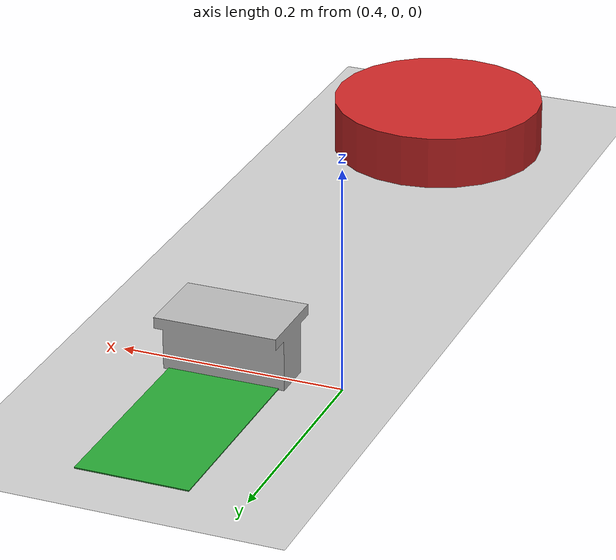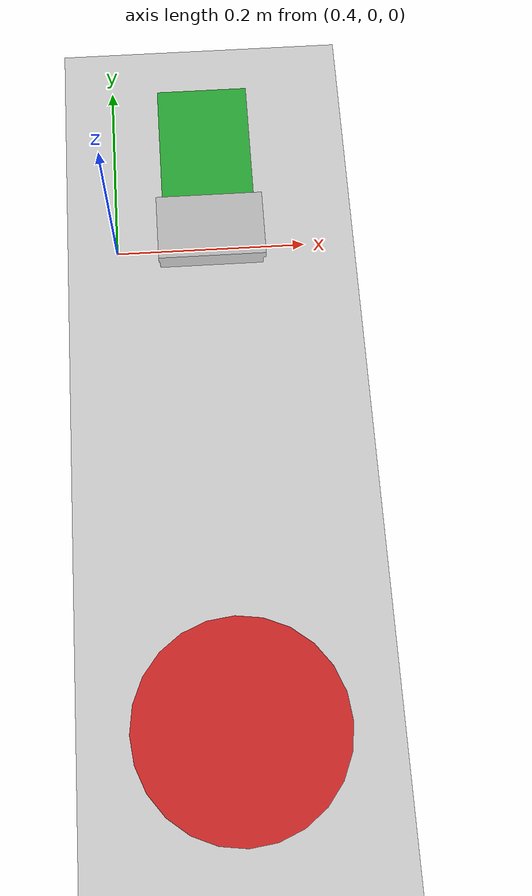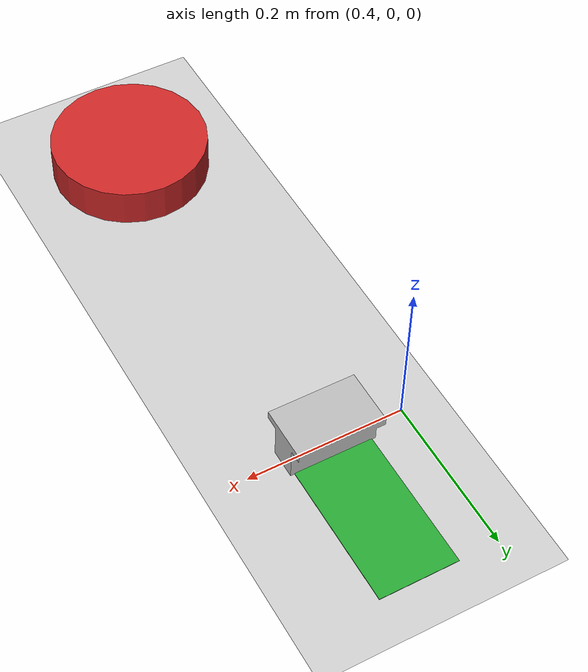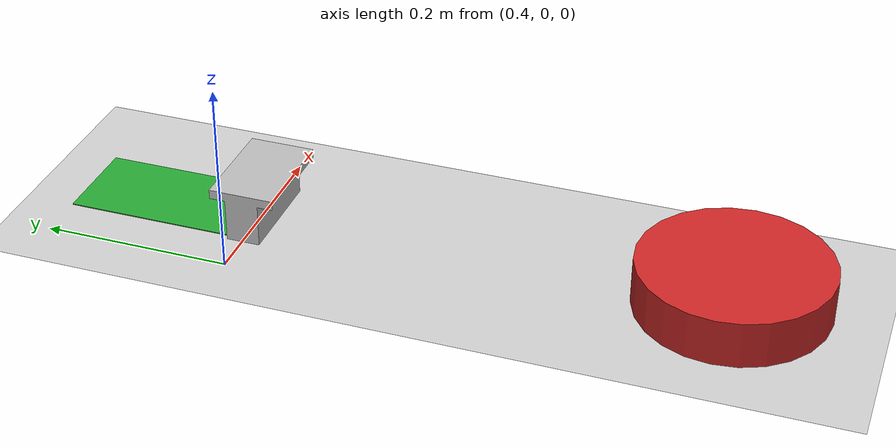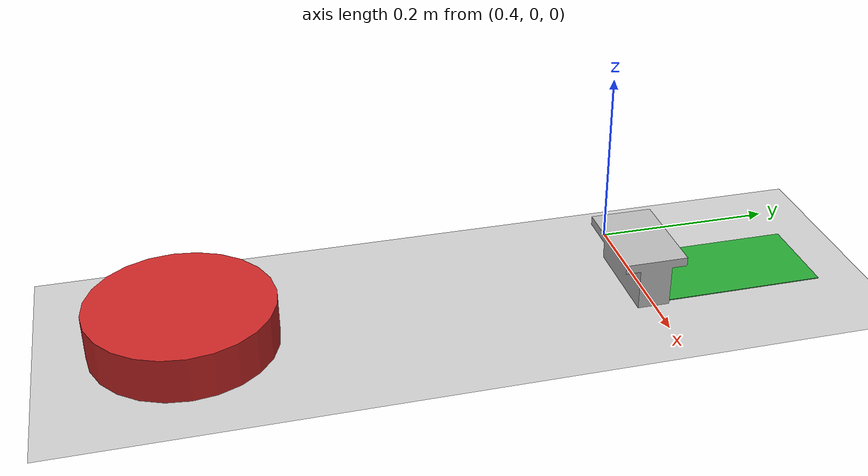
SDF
<?xml version="1.0" ?>
<sdf version="1.5">
  <world name="robomaster_rale">
    <light type="directional" name="my_light">
      <pose>0 0 10 0 0 0</pose>
    </light>
    <include>
      <uri>model://sun</uri>
    </include>
    <include>
      <uri>model://ground_plane</uri>
    </include>
    <include>
      <name>aruco_i_block</name>
      <uri>model://aruco_block_long</uri>
      <static>false</static>
      <pose>0.5 0 0.02 0 0 0</pose>
    </include>
    <model name='unit_cylinder'>
      <pose>0.5 -0.5 0.025 0 -0 0</pose>
      <static>true</static>
      <link name='link'>
        <inertial>
          <mass>1</mass>
          <inertia>
            <ixx>0.145833</ixx>
            <ixy>0</ixy>
            <ixz>0</ixz>
            <iyy>0.145833</iyy>
            <iyz>0</iyz>
            <izz>0.125</izz>
          </inertia>
          <pose>0 0 0 0 0 0</pose>
        </inertial>
        <collision name='collision'>
          <geometry>
            <cylinder>
              <radius>0.1</radius>
              <length>0.05</length>
            </cylinder>
          </geometry>
          <max_contacts>10</max_contacts>
          <surface>
            <contact>
              <ode/>
            </contact>
            <bounce/>
            <friction>
              <torsional>
                <ode/>
              </torsional>
              <ode/>
            </friction>
          </surface>
        </collision>
        <visual name='visual'>
          <geometry>
            <cylinder>
              <radius>0.1</radius>
              <length>0.05</length>
            </cylinder>
          </geometry>
          <material>
            <script>
              <name>Gazebo/Red</name>
              <uri>file://media/materials/scripts/gazebo.material</uri>
            </script>
          </material>
        </visual>
      </link>
    </model>

    <model name="custom_ground_plane_box">
        <pose>0.5 0.1 0 0 0 0</pose>
      <link name="link">
        <inertial>
          <pose>0 0 0 0 0 0</pose>
          <mass>100</mass>
          <inertia>
            <ixx>3.33341666667e+3</ixx>
            <ixy>0.0</ixy>
            <ixz>0.0</ixz>
            <iyy>3.33341666667e+3</iyy>
            <iyz>0.0</iyz>
            <izz>6.66666666667e+3</izz>
          </inertia>
        </inertial>
        <collision name="collision">
          <geometry>
            <box>
              <size>0.1 0.2 0.001</size>
            </box>
          </geometry>
          <surface>
              <friction>
                <ode>
                  <mu>01</mu>
                  <mu2>01</mu2>
                </ode>
              </friction>
            </surface>
        </collision>

        <visual name="visual">
          <geometry>
            <box>
              <size>0.1 0.2 0.001</size>
            </box>
          </geometry>
          <material>
              <script>
                <uri>file://media/materials/scripts/gazebo.material</uri>
                <name>Gazebo/Green</name>
              </script>
            </material>
        </visual>

      </link>
      <plugin name="plannar_mover_plugin" filename="libplannar_mover_plugin.so"/>
    </model>
  </world>
</sdf>

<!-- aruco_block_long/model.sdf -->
<sdf version="1.5">
  <model name="aruco_block_long">
    <static>false</static>
    <link name="link">
      <inertial>
        <mass>0.349</mass>
        <inertia>
          <ixx>1.45e-4</ixx>
          <ixy>0.0</ixy>
          <ixz>0.0</ixz>
          <iyy>1.45e-4</iyy>
          <iyz>0.0</iyz>
          <izz>1.45e-4</izz>
        </inertia>
      </inertial>
      <collision name="collision">
        <geometry>
          <mesh>
            <scale>1 1 1</scale>
            <uri>model://aruco_block_long/meshes/block_long.dae</uri>
          </mesh>
        </geometry>
        <surface>
          <friction>
            <ode>
              <mu>1.2</mu>
              <mu2>1.2</mu2>
            </ode>
          </friction>
        </surface>
      </collision>
      <visual name="visual">
        <geometry>
          <mesh>
            <scale>1 1 1</scale>
            <uri>model://aruco_block_long/meshes/block_long.dae</uri>
          </mesh>
        </geometry>
      </visual>
    </link>
  </model>
</sdf>
